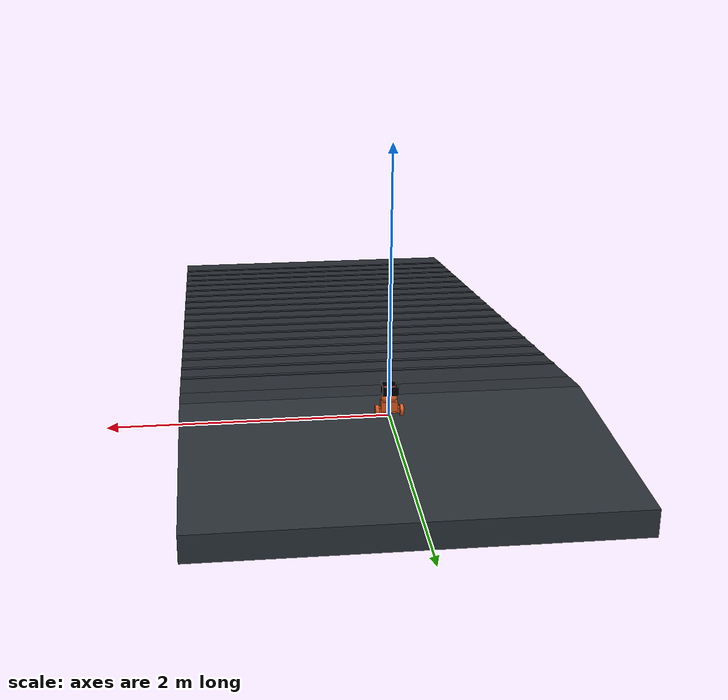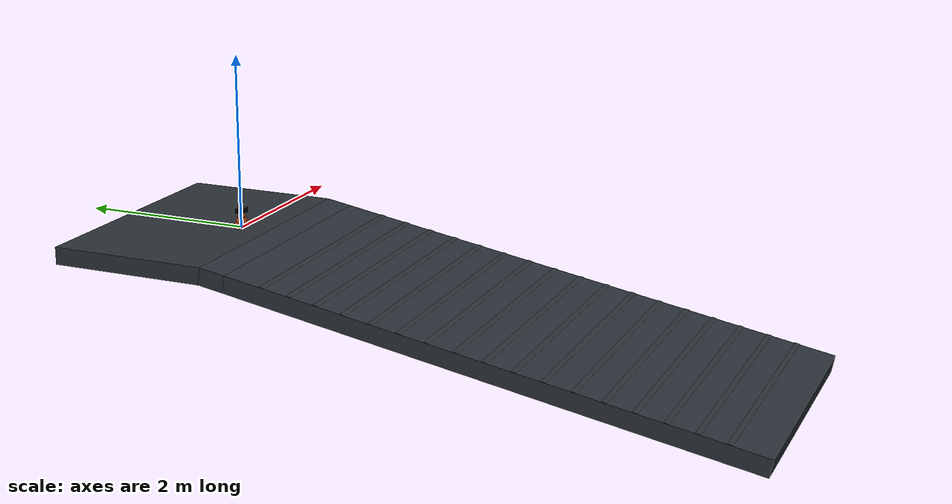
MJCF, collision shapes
<mujoco model="Stage4B rbase_ep_041_test_m10p0">
  <compiler angle="radian" meshdir="../../../../assets/upstream_local" />
  <option timestep="0.001" integrator="implicitfast" gravity="0 0 -9.81" />
  <statistic center="0 0 0.10" extent="0.35" />
  <default>
    <default class="visual">
      <geom contype="0" conaffinity="0" group="2" />
    </default>
    <default class="collision">
      <geom group="3" rgba="0.85 0.35 0.12 0.25" solref="0.005 1" solimp="0.9 0.95 0.001" />
    </default>
  </default>
  <asset>
    <texture name="ground_tex" type="2d" builtin="checker" rgb1="0.22 0.25 0.28" rgb2="0.12 0.14 0.16" width="256" height="256" />
    <material name="ground_mat" texture="ground_tex" texrepeat="4 4" reflectance="0.15" />
    <mesh name="main_frame_mesh" file="main_frame.stl" scale="0.001 0.001 0.001" />
    <mesh name="wheel_base_mesh" file="wheel_base.stl" scale="0.001 0.001 0.001" />
    <mesh name="cover_mesh" file="cover.stl" scale="0.001 0.001 0.001" />
    <mesh name="motor_left_mesh" file="motor_left.stl" scale="0.001 0.001 0.001" />
    <mesh name="motor_right_mesh" file="motor_right.stl" scale="0.001 0.001 0.001" />
    <mesh name="mc33926_mesh" file="mc33926.stl" scale="0.001 0.001 0.001" />
    <mesh name="wheel_mesh" file="wheel.stl" scale="0.001 0.001 0.001" />
    <mesh name="adapter_left_mesh" file="adapter_left.stl" scale="0.001 0.001 0.001" />
    <mesh name="adapter_right_mesh" file="adapter_right.stl" scale="0.001 0.001 0.001" />
  </asset>
  <worldbody>
    <light pos="0 -0.5 0.8" dir="0 0.6 -1" diffuse="0.8 0.8 0.8" />
    <geom name="terrain_flat" type="box" pos="0 0.575 -0.1" size="1.5 0.925 0.1" material="ground_mat" friction="0.12 0.005 0.0001" condim="3" />
    <geom name="terrain_transition" type="box" pos="0 -0.480356345185 -0.124528001951" euler="0.174532925199 0 0" size="1.5 0.15 0.1" material="ground_mat" friction="0.12 0.005 0.0001" condim="3" />
    <geom name="terrain_constant_grade" type="box" pos="0 -3.58250076717 -0.671519761602" euler="0.174532925199 0 0" size="1.5 3 0.1" material="ground_mat" friction="0.12 0.005 0.0001" condim="3" />
    <geom name="terrain_rough_00" type="box" pos="0 -1.08912675929 -0.127281709991" euler="0.174532925199 0 0" size="1.5 0.0275 0.003" material="ground_mat" friction="0.12 0.005 0.0001" condim="3" />
    <geom name="terrain_rough_01" type="box" pos="0 -1.40426524026 -0.182849126845" euler="0.174532925199 0 0" size="1.5 0.0275 0.003" material="ground_mat" friction="0.12 0.005 0.0001" condim="3" />
    <geom name="terrain_rough_02" type="box" pos="0 -1.71940372122 -0.238416543698" euler="0.174532925199 0 0" size="1.5 0.0275 0.003" material="ground_mat" friction="0.12 0.005 0.0001" condim="3" />
    <geom name="terrain_rough_03" type="box" pos="0 -2.03454220218 -0.293983960551" euler="0.174532925199 0 0" size="1.5 0.0275 0.003" material="ground_mat" friction="0.12 0.005 0.0001" condim="3" />
    <geom name="terrain_rough_04" type="box" pos="0 -2.34968068315 -0.349551377405" euler="0.174532925199 0 0" size="1.5 0.0275 0.003" material="ground_mat" friction="0.12 0.005 0.0001" condim="3" />
    <geom name="terrain_rough_05" type="box" pos="0 -2.66481916411 -0.405118794258" euler="0.174532925199 0 0" size="1.5 0.0275 0.003" material="ground_mat" friction="0.12 0.005 0.0001" condim="3" />
    <geom name="terrain_rough_06" type="box" pos="0 -2.97995764508 -0.460686211112" euler="0.174532925199 0 0" size="1.5 0.0275 0.003" material="ground_mat" friction="0.12 0.005 0.0001" condim="3" />
    <geom name="terrain_rough_07" type="box" pos="0 -3.29509612604 -0.516253627965" euler="0.174532925199 0 0" size="1.5 0.0275 0.003" material="ground_mat" friction="0.12 0.005 0.0001" condim="3" />
    <geom name="terrain_rough_08" type="box" pos="0 -3.610234607 -0.571821044819" euler="0.174532925199 0 0" size="1.5 0.0275 0.003" material="ground_mat" friction="0.12 0.005 0.0001" condim="3" />
    <geom name="terrain_rough_09" type="box" pos="0 -3.92537308797 -0.627388461672" euler="0.174532925199 0 0" size="1.5 0.0275 0.003" material="ground_mat" friction="0.12 0.005 0.0001" condim="3" />
    <geom name="terrain_rough_10" type="box" pos="0 -4.24051156893 -0.682955878525" euler="0.174532925199 0 0" size="1.5 0.0275 0.003" material="ground_mat" friction="0.12 0.005 0.0001" condim="3" />
    <geom name="terrain_rough_11" type="box" pos="0 -4.5556500499 -0.738523295379" euler="0.174532925199 0 0" size="1.5 0.0275 0.003" material="ground_mat" friction="0.12 0.005 0.0001" condim="3" />
    <geom name="terrain_rough_12" type="box" pos="0 -4.87078853086 -0.794090712232" euler="0.174532925199 0 0" size="1.5 0.0275 0.003" material="ground_mat" friction="0.12 0.005 0.0001" condim="3" />
    <geom name="terrain_rough_13" type="box" pos="0 -5.18592701182 -0.849658129086" euler="0.174532925199 0 0" size="1.5 0.0275 0.003" material="ground_mat" friction="0.12 0.005 0.0001" condim="3" />
    <geom name="terrain_rough_14" type="box" pos="0 -5.50106549279 -0.905225545939" euler="0.174532925199 0 0" size="1.5 0.0275 0.003" material="ground_mat" friction="0.12 0.005 0.0001" condim="3" />
    <geom name="terrain_rough_15" type="box" pos="0 -5.81620397375 -0.960792962792" euler="0.174532925199 0 0" size="1.5 0.0275 0.003" material="ground_mat" friction="0.12 0.005 0.0001" condim="3" />
    <geom name="terrain_rough_16" type="box" pos="0 -6.13134245471 -1.01636037965" euler="0.174532925199 0 0" size="1.5 0.0275 0.003" material="ground_mat" friction="0.12 0.005 0.0001" condim="3" />
    <body name="chassis" pos="0 0 0.043">
      <freejoint name="root" />
      <inertial pos="0.0001592717873 -0.001394466535 0.03368627387" mass="0.8173706489" fullinertia="0.0009508052638 0.001636345835 0.0009938057434 -1.163464906e-07 -4.840496598e-06 3.454944565e-05" />
      <geom name="main_frame_visual" class="visual" type="mesh" mesh="main_frame_mesh" rgba="0.12 0.42 0.72 1" />
      <geom name="wheel_base_visual" class="visual" type="mesh" mesh="wheel_base_mesh" rgba="0.95 0.50 0.10 1" />
      <geom name="cover_visual" class="visual" type="mesh" mesh="cover_mesh" rgba="0.18 0.72 0.32 0.72" />
      <geom name="motor_left_visual" class="visual" type="mesh" mesh="motor_left_mesh" rgba="0.45 0.47 0.50 1" />
      <geom name="motor_right_visual" class="visual" type="mesh" mesh="motor_right_mesh" rgba="0.45 0.47 0.50 1" />
      <geom name="mc33926_visual" class="visual" type="mesh" mesh="mc33926_mesh" rgba="0.08 0.36 0.18 1" />
      <geom name="battery_1_visual" class="visual" type="box" pos="0 -0.012 0.038" size="0.035 0.007 0.025" rgba="0.15 0.25 0.75 1" />
      <geom name="battery_2_visual" class="visual" type="box" pos="0 0.012 0.038" size="0.035 0.007 0.025" rgba="0.15 0.25 0.75 1" />
      <geom name="electronics_lump_visual" class="visual" type="box" pos="0 -0.024 0.067" size="0.035 0.006 0.0425" rgba="0.10 0.42 0.20 0.65" />
      <geom name="wheel_base_collision" class="collision" type="box" pos="0 0.0005 0.0042" size="0.074 0.0201 0.0198" />
      <geom name="lower_chassis_collision" class="collision" type="box" pos="0.001 -0.0015 0.038" size="0.0595 0.0325 0.038" />
      <geom name="upper_chassis_collision" class="collision" type="capsule" fromto="-0.024 -0.0015 0.096 0.026 -0.0015 0.096" size="0.033" />
      <geom name="basket_floor" class="collision" type="box" pos="0 0 0.137" size="0.055 0.052 0.003" friction="0.024 0.005 0.0001" rgba="0.18 0.30 0.48 0.65" />
      <geom name="basket_front_wall" class="collision" type="box" pos="0 -0.052 0.170" size="0.055 0.003 0.033" friction="0.024 0.005 0.0001" rgba="0 0 0 0" />
      <geom name="basket_rear_wall" class="collision" type="box" pos="0 0.052 0.170" size="0.055 0.003 0.033" friction="0.024 0.005 0.0001" rgba="0 0 0 0" />
      <geom name="basket_left_wall" class="collision" type="box" pos="-0.055 0 0.170" size="0.003 0.052 0.033" friction="0.024 0.005 0.0001" rgba="0 0 0 0" />
      <geom name="basket_right_wall" class="collision" type="box" pos="0.055 0 0.170" size="0.003 0.052 0.033" friction="0.024 0.005 0.0001" rgba="0 0 0 0" />
      <site name="imu_site" type="box" pos="0 0 0.020" quat="1 0 0 0" size="0.004 0.003 0.001" rgba="1 0.15 0.05 1" />
      <body name="left_wheel" pos="-0.0885 0 0">
        <joint name="left_wheel_hinge" type="hinge" axis="1 0 0" damping="0.002" frictionloss="0.002" />
        <inertial pos="0.001407549168 -2.310217342e-08 4.024972882e-05" mass="0.1051" fullinertia="8.559060347e-05 4.760138372e-05 4.763051958e-05 2.677568832e-11 -3.525425309e-08 -1.463149106e-11" />
        <geom name="left_wheel_visual" class="visual" type="mesh" mesh="wheel_mesh" rgba="0.04 0.05 0.06 1" />
        <geom name="left_adapter_visual" class="visual" type="mesh" mesh="adapter_left_mesh" rgba="0.12 0.48 0.82 1" />
        <geom name="left_wheel_collision" class="collision" type="cylinder" size="0.042 0.012" quat="0.7071067812 0 0.7071067812 0" friction="0.12 0.005 0.0001" />
      </body>
      <body name="right_wheel" pos="0.0885 0 0">
        <joint name="right_wheel_hinge" type="hinge" axis="1 0 0" damping="0.002" frictionloss="0.002" />
        <inertial pos="-0.001407437868 -2.310217342e-08 -4.019113045e-05" mass="0.1051" fullinertia="8.559060397e-05 4.760141714e-05 4.763055251e-05 -2.601653908e-11 -3.526339188e-08 1.57007511e-11" />
        <geom name="right_wheel_visual" class="visual" type="mesh" mesh="wheel_mesh" rgba="0.04 0.05 0.06 1" />
        <geom name="right_adapter_visual" class="visual" type="mesh" mesh="adapter_right_mesh" rgba="0.12 0.48 0.82 1" />
        <geom name="right_wheel_collision" class="collision" type="cylinder" size="0.042 0.012" quat="0.7071067812 0 0.7071067812 0" friction="0.12 0.005 0.0001" />
      </body>
    </body>
    <body name="moving_payload" pos="0 0 0.204">
      <freejoint name="moving_payload_free" />
      <inertial pos="0 0 0" mass="0.20" diaginertia="0.0000533333333 0.0001333333333 0.0001333333333" />
      <geom name="moving_payload_collision" class="collision" type="box" size="0.040 0.020 0.020" friction="0.024 0.005 0.0001" rgba="0.78 0.18 0.12 1" />
    </body>
  </worldbody>
  <actuator>
    <motor name="left_wheel_torque" joint="left_wheel_hinge" gear="1" ctrllimited="true" ctrlrange="-0.63 0.63" forcelimited="true" forcerange="-0.63 0.63" />
    <motor name="right_wheel_torque" joint="right_wheel_hinge" gear="1" ctrllimited="true" ctrlrange="-0.63 0.63" forcelimited="true" forcerange="-0.63 0.63" />
  </actuator>
  <sensor>
    <accelerometer name="imu_accelerometer" site="imu_site" />
    <gyro name="imu_gyro" site="imu_site" />
    <jointpos name="left_wheel_angle" joint="left_wheel_hinge" />
    <jointpos name="right_wheel_angle" joint="right_wheel_hinge" />
  </sensor>
  <keyframe>
    <key name="upright" qpos="0 0 0.043 1 0 0 0 0 0 0 0 0.204 1 0 0 0" />
  </keyframe>
</mujoco>
